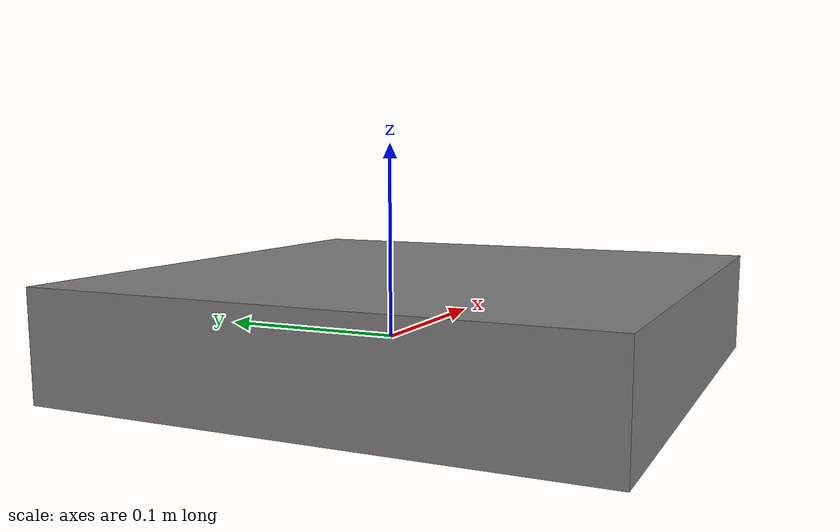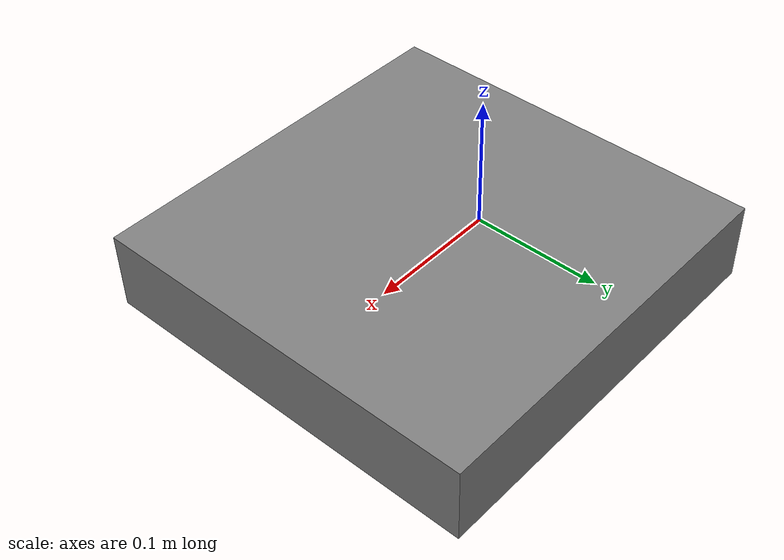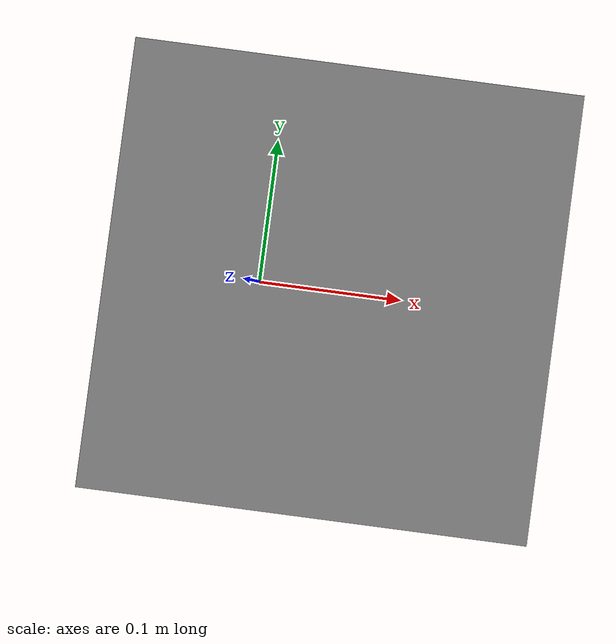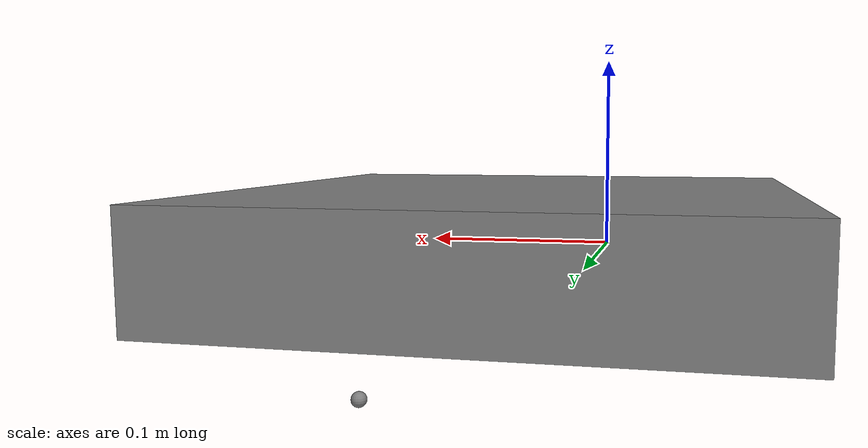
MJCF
<mujoco model="offset_drone">
  <compiler angle="radian" inertiafromgeom="false"/>
  <worldbody>
    <body name="base">
      <freejoint/>
      <inertial pos="0.05 0 0" mass="1" diaginertia="0.02 0.02 0.04"/>
      <geom type="box" pos="0.05 0 0" size="0.15 0.15 0.03" contype="0" conaffinity="0"/>
      <site name="cable_attachment" pos="0.15 0 -0.1" size="0.005"/>
    </body>
  </worldbody>
</mujoco>
